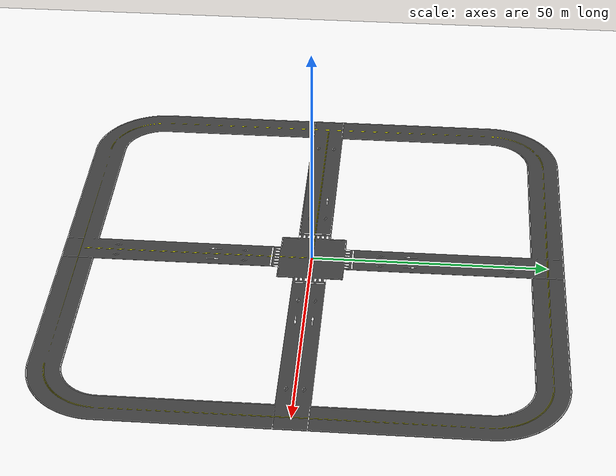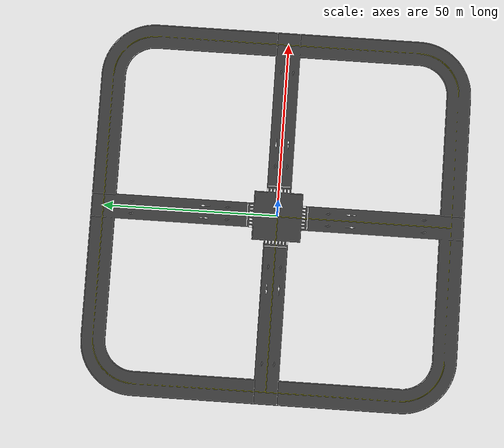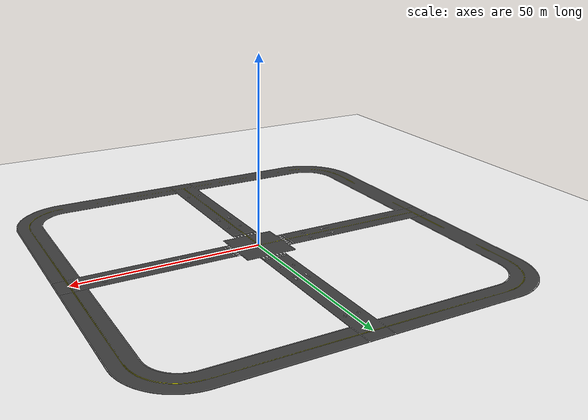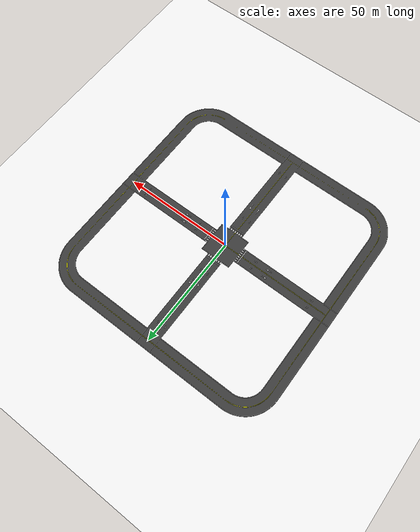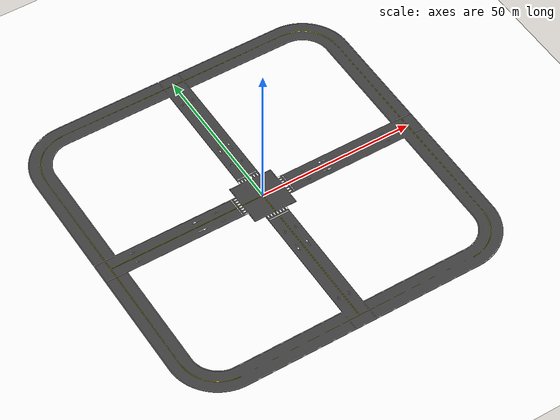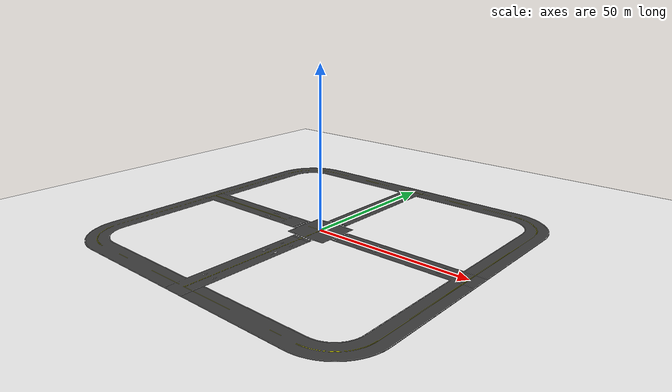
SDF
<?xml version="1.0" ?>
<sdf version="1.9">

  <world name="main_world">

    <!-- Physics -->
    <physics name="default_physics" type="dart">
      <max_step_size>0.001</max_step_size>
      <real_time_factor>1.0</real_time_factor>
      <real_time_update_rate>1000</real_time_update_rate>
    </physics>

    <!-- Scene -->
    <scene>

      <!-- 전체 조명 -->
      <ambient>1 1 1 1</ambient>

      <!-- 하늘 배경 -->
      <background>1 1 1 1</background>

      <!-- 그림자 제거 -->
      <shadows>false</shadows>

    </scene>

    <!-- White Ground -->
    <model name="ground_plane">

      <static>true</static>

      <link name="link">

        <!-- Collision -->
        <collision name="collision">

          <geometry>
            <plane>
              <normal>0 0 1</normal>
              <size>500 500</size>
            </plane>
          </geometry>

        </collision>

        <!-- Visual -->
        <visual name="visual">

          <geometry>
            <plane>
              <normal>0 0 1</normal>
              <size>500 500</size>
            </plane>
          </geometry>

          <!-- 완전 흰색 -->
          <material>

            <ambient>1 1 1 1</ambient>

            <diffuse>1 1 1 1</diffuse>

            <specular>1 1 1 1</specular>

            <emissive>1 1 1 1</emissive>

          </material>

        </visual>

      </link>

    </model>

    <!-- Square Intersection Map -->
    <include>

      <uri>model://square_intersection_gazebo_map</uri>

      <pose>0 0 0.01 0 0 0</pose>

    </include>

  </world>

</sdf>

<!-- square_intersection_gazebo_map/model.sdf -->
<sdf version="1.9">

  <model name="square_intersection_gazebo_map">

    <static>true</static>

    <link name="map_link">

      <visual name="asphalt_visual">
        <geometry>
          <mesh>
            <uri>model://square_intersection_gazebo_map/meshes/road_asphalt.stl</uri>
            <scale>1 1 1</scale>
          </mesh>
        </geometry>
        <material>
          <ambient>0.2 0.2 0.2 1</ambient>
          <diffuse>0.25 0.25 0.25 1</diffuse>
        </material>
      </visual>

      <visual name="white_edge_visual">
        <geometry>
          <mesh>
            <uri>model://square_intersection_gazebo_map/meshes/white_edge_lines.stl</uri>
            <scale>1 1 1</scale>
          </mesh>
        </geometry>
        <material>
          <ambient>1 1 1 1</ambient>
          <diffuse>1 1 1 1</diffuse>
        </material>
      </visual>

      <visual name="yellow_center_visual">
        <geometry>
          <mesh>
            <uri>model://square_intersection_gazebo_map/meshes/yellow_centerlines.stl</uri>
            <scale>1 1 1</scale>
          </mesh>
        </geometry>
        <material>
          <ambient>1 1 0 1</ambient>
          <diffuse>1 1 0 1</diffuse>
        </material>
      </visual>

      <visual name="white_detail_visual">
        <geometry>
          <mesh>
            <uri>model://square_intersection_gazebo_map/meshes/white_straight_details.stl</uri>
            <scale>1 1 1</scale>
          </mesh>
        </geometry>
        <material>
          <ambient>1 1 1 1</ambient>
          <diffuse>1 1 1 1</diffuse>
        </material>
      </visual>

      <collision name="collision">
        <geometry>
          <mesh>
            <uri>model://square_intersection_gazebo_map/meshes/road_asphalt.stl</uri>
            <scale>1 1 1</scale>
          </mesh>
        </geometry>
      </collision>

    </link>

  </model>

</sdf>
